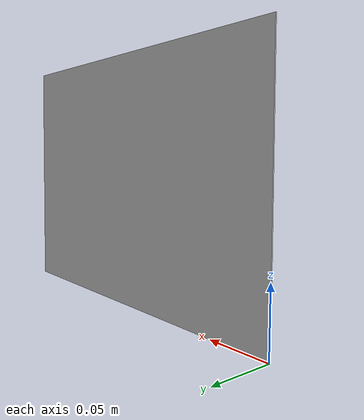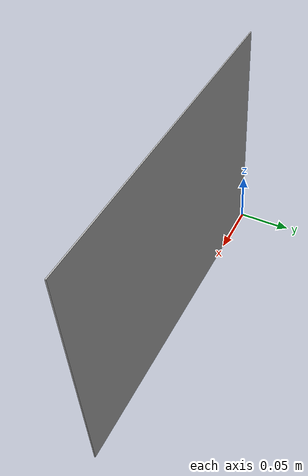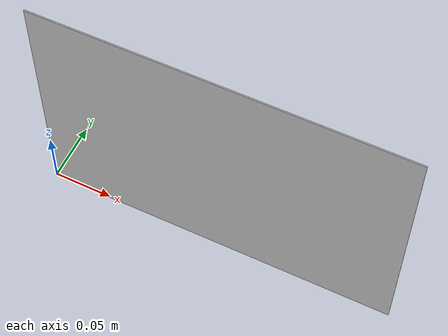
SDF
<?xml version="1.0" ?>

<sdf version="1.6">
    <model name="block11">
      <static>true</static>
      <link name="link">
        <pose>0.1485 -0.0005 0.105 0 0 0</pose>
        <visual name="visual">
          <geometry>
            <box>
              <size>0.297 0.001 0.210</size>
            </box>
          </geometry>
        <material>
          <script>
            <uri>model://block11/materials/scripts/</uri>
            <uri>model://block11/materials/textures/</uri>
            <name>AprilTag/Image11</name>
          </script>
        </material>
        </visual>
      </link>
    </model>
</sdf>
